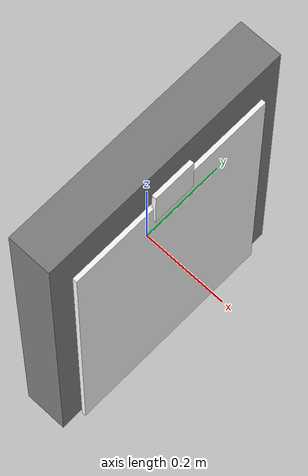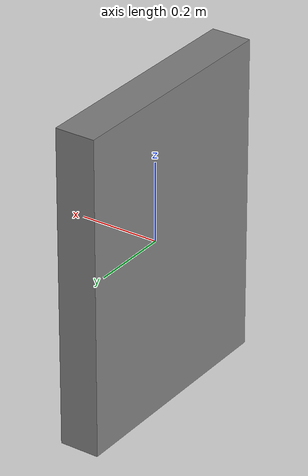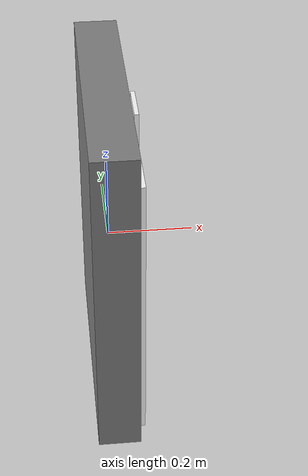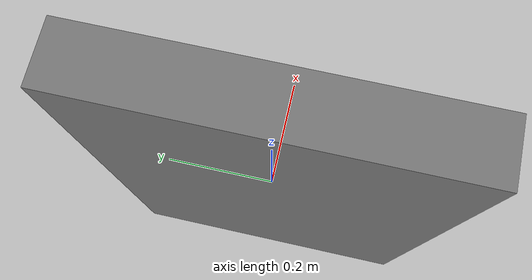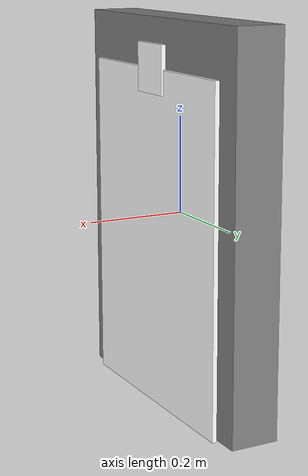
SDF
<?xml version="1.0" ?>
<sdf version="1.8">
  <model name="poster_board_6">
    <static>true</static>
    <link name="link">
      <!-- Frame (Small: 0.6 width x 0.8 height) -->
      <visual name="frame">
        <geometry><box><size>0.1 0.6 0.8</size></box></geometry>
        <material><ambient>0.5 0.5 0.5 1</ambient><diffuse>0.5 0.5 0.5 1</diffuse></material>
      </visual>

      <!-- Poster Content (0.5 x 0.7) -->
      <visual name="poster">
        <pose>0.06 0 -0.05 0 0 0</pose>
        <geometry><box><size>0.01 0.5 0.7</size></box></geometry>
        <material>
          <ambient>1 1 1 1</ambient><diffuse>1 1 1 1</diffuse>
          <pbr><metal><albedo_map>materials/textures/poster6.jpeg</albedo_map></metal></pbr>
        </material>
      </visual>

      <!-- ArUco Marker (Top Edge) -->
      <visual name="aruco_marker">
        <pose>0.065 0 0.3 0 0 0</pose>
        <geometry><box><size>0.01 0.1 0.1</size></box></geometry>
        <material>
          <ambient>1 1 1 1</ambient><diffuse>1 1 1 1</diffuse>
          <pbr><metal><albedo_map>materials/textures/aruco_marker.png</albedo_map></metal></pbr>
        </material>
      </visual>

       <collision name="collision">
         <geometry><box><size>0.1 0.6 0.8</size></box></geometry>
      </collision>
    </link>
  </model>
</sdf>
